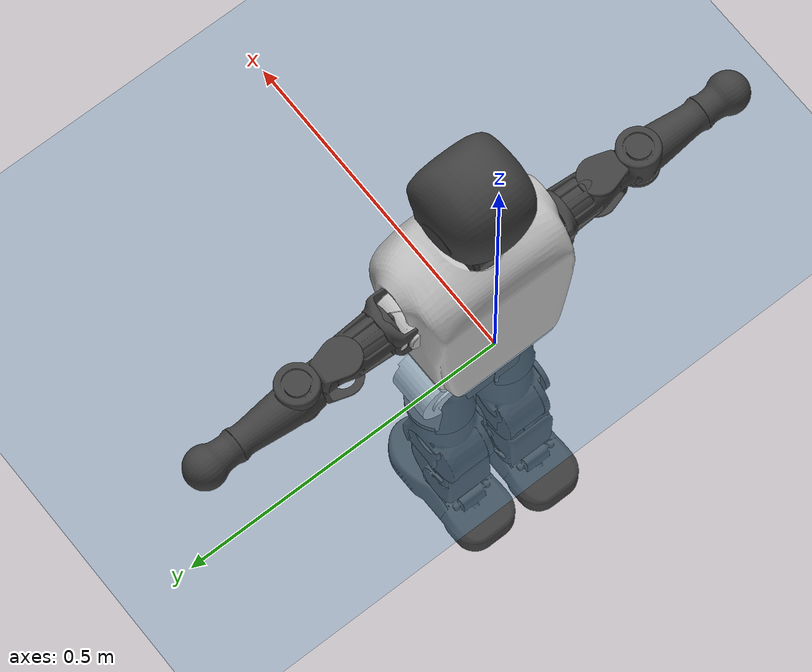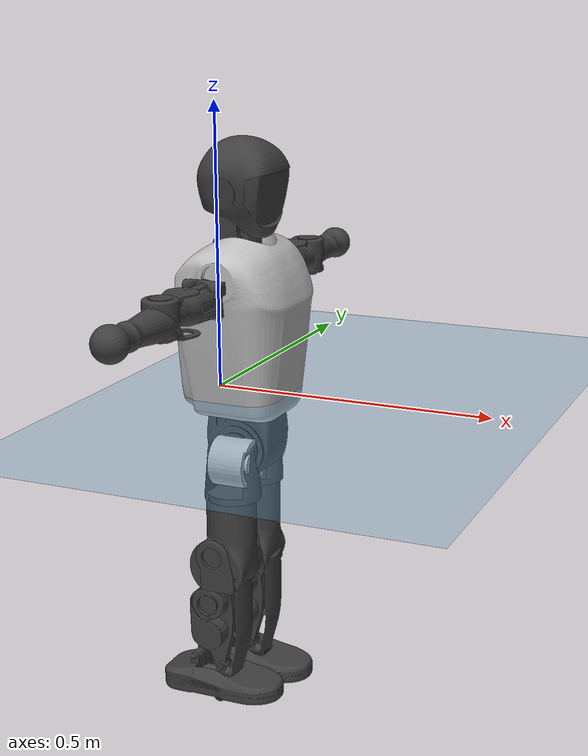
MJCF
<mujoco model="T1">
  <compiler angle="radian" assetdir="assets" balanceinertia="true" inertiafromgeom="false"/>

  <option timestep="0.005" density="1.2" viscosity="2e-05"/>

  <size nkey="1"/>

  <visual>
    <quality shadowsize="8192"/>
    <map shadowclip="0.5"/>
  </visual>

  <default>
    <default class="/">
      <joint armature="0.01" damping="0.01" frictionloss="0.1"/>
      <geom contype="0" conaffinity="0" group="1" solref="-1000 -80"/>
      <site size="0.01 0.005 0.005" group="5"/>
      <general forcelimited="true" biastype="affine" gainprm="25" biasprm="0 -25 -0.6"/>
      <default class="t1">
        <geom rgba="0.25 0.25 0.25 1"/>
        <default class="visual">
          <geom type="mesh" group="2"/>
        </default>
        <default class="collision">
          <geom group="3"/>
        </default>
        <default class="foot">
          <geom size="0.1115 0.05 0.015" type="box" condim="6" group="4" priority="1" solimp="0.015 1 0.015"/>
        </default>
        <default class="reward_collision_sphere">
          <geom group="5" rgba="1 0 0 1"/>
        </default>
      </default>
    </default>
  </default>

  <asset>
    <texture type="skybox" colorspace="auto" name="//unnamed_texture_0" builtin="gradient" rgb1="0.95 0.95 0.95" rgb2="0.95 0.95 0.95" width="100" height="600"/>
    <texture type="2d" colorspace="auto" name="texplane" builtin="checker" rgb1="0.345 0.575 0.748" rgb2="0.345 0.575 0.748" markrgb="1 1 1" width="512" height="512"/>
    <material name="MatPlane" class="/" texture="texplane" texuniform="true" texrepeat="2 2" specular="0.9"/>
    <mesh name="Trunk" class="/" file="Trunk.stl"/>
    <mesh name="H1" class="/" file="H1.stl"/>
    <mesh name="H2" class="/" file="H2.stl"/>
    <mesh name="AL1" class="/" file="AL1.stl"/>
    <mesh name="AL2" class="/" file="AL2.stl"/>
    <mesh name="AL3" class="/" file="AL3.stl"/>
    <mesh name="left_hand_link" class="/" file="left_hand_link.stl"/>
    <mesh name="AR1" class="/" file="AR1.stl"/>
    <mesh name="AR2" class="/" file="AR2.stl"/>
    <mesh name="AR3" class="/" file="AR3.stl"/>
    <mesh name="right_hand_link" class="/" file="right_hand_link.stl"/>
    <mesh name="Waist" class="/" file="Waist.stl"/>
    <mesh name="Hip_Pitch_Left" class="/" file="Hip_Pitch_Left.stl"/>
    <mesh name="Hip_Roll_Left" class="/" file="Hip_Roll_Left.stl"/>
    <mesh name="Hip_Yaw_Left" class="/" file="Hip_Yaw_Left.stl"/>
    <mesh name="Shank_Left" class="/" file="Shank_Left.stl"/>
    <mesh name="Ankle_Cross_Left" class="/" file="Ankle_Cross_Left.stl"/>
    <mesh name="left_foot_link" class="/" file="left_foot_link.stl"/>
    <mesh name="Hip_Pitch_Right" class="/" file="Hip_Pitch_Right.stl"/>
    <mesh name="Hip_Roll_Right" class="/" file="Hip_Roll_Right.stl"/>
    <mesh name="Hip_Yaw_Right" class="/" file="Hip_Yaw_Right.stl"/>
    <mesh name="Shank_Right" class="/" file="Shank_Right.stl"/>
    <mesh name="Ankle_Cross_Right" class="/" file="Ankle_Cross_Right.stl"/>
    <mesh name="right_foot_link" class="/" file="right_foot_link.stl"/>
  </asset>

  <worldbody>
    <geom name="floor" class="/" size="100 100 0.125" type="plane" group="0" material="MatPlane"/>
    <light name="toplight_shadow" class="/" pos="0 0 5" dir="0.0990148 0.0990148 -0.990148" type="directional" ambient="0.04 0.04 0.04" diffuse="0.55 0.55 0.55" specular="0.12 0.12 0.12"/>
    <light name="toplight_fill" class="/" pos="0 0 5" dir="0.0990148 0.0990148 -0.990148" type="directional" castshadow="false" ambient="0.04 0.04 0.04" diffuse="0.3 0.3 0.3" specular="0.08 0.08 0.08"/>
    <body name="trunk" childclass="t1" pos="-0.0018927 0.00152389 -0.00127791" quat="0.999994 -0.000335532 0.0033436 0.000870132">
      <inertial pos="0.0439614 0.00479032 0.087957" quat="0.999966 0.00727205 -0.0023594 -0.00299449" mass="4.45774" diaginertia="0.0178705 0.00505678 0.0241193"/>
      <joint name="//unnamed_joint_0" type="free" armature="0" damping="0" frictionloss="0"/>
      <geom name="//unnamed_geom_1" class="visual" rgba="0.76 0.76 0.76 1" mesh="Trunk"/>
      <geom name="//unnamed_geom_2" class="collision" size="0.0530399 0.0707199 0.10608" pos="0.0432422 0 0.0990851" type="box"/>
      <geom name="//unnamed_geom_3" class="reward_collision_sphere" size="0.0813279" pos="0.0432422 0 0.0825709"/>
      <geom name="//unnamed_geom_4" class="reward_collision_sphere" size="0.010608" pos="0.0432422 0.0488908 0"/>
      <geom name="//unnamed_geom_5" class="reward_collision_sphere" size="0.010608" pos="0.0432422 -0.0488908 0"/>
      <geom name="//unnamed_geom_6" class="reward_collision_sphere" size="0.010608" pos="0.0432422 0.0615449 0.148628"/>
      <geom name="//unnamed_geom_7" class="reward_collision_sphere" size="0.010608" pos="0.0432422 -0.0615449 0.148628"/>
      <site name="imu" pos="-0.0178919 0.00700386 0.0180322" size="0.00707199"/>
      <camera name="track" pos="0 -1.15037 0" quat="0.707107 0.707107 0 0" mode="trackcom"/>
      <camera name="ego_camera" pos="0.0879258 0 0.346798" quat="-0.5 -0.5 0.5 0.5"/>
      <body name="H1" pos="0.0444302 -0.00141643 0.201968" quat="1 -6.23802e-05 -0.000229802 -0.000149994">
        <inertial pos="0.00131754 -0.00864571 0.0463071" quat="0.783077 0.0014292 0.000843092 0.621923" mass="0.16572" diaginertia="4.98407e-05 1.56288e-05 6.65136e-05"/>
        <joint name="AAHead_yaw" pos="0 0 0" axis="0.0243321 -0.0238031 0.999421" range="-1.58559 1.53624" armature="0.00803617" damping="0.0109055" frictionloss="0.0711754"/>
        <geom name="//unnamed_geom_8" class="visual" mesh="H1"/>
        <body name="H2" pos="-0.00410813 -0.00711937 0.0546178" quat="0.999999 -0.000194022 0.000712723 -0.000712308">
          <inertial pos="-1.37307e-05 -0.00571999 0.0826479" quat="0.988236 0.113648 -0.0700071 -0.074654" mass="0.216673" diaginertia="0.000357484 0.000118984 0.000638958"/>
          <joint name="Head_pitch" pos="0 0 0" axis="-0.00250746 -0.999997 -0.000758422" range="-1.24816 0.35782" armature="0.0096276" damping="0.00536582" frictionloss="0.039183"/>
          <geom name="//unnamed_geom_9" class="visual" mesh="H2"/>
          <geom name="//unnamed_geom_10" class="collision" size="0.0565759" pos="0.00720703 0 0.090828"/>
          <geom name="//unnamed_geom_11" class="reward_collision_sphere" size="0.0636479" pos="0.0144141 0 0.0825709"/>
        </body>
      </body>
      <body name="AL1" pos="0.0432733 0.0661823 0.188304" quat="1 -0.000467045 0.000279255 -0.00021661">
        <inertial pos="0.00662228 0.02806 -0.0022304" quat="0.506681 0.497635 -0.49508 0.500529" mass="0.180729" diaginertia="0.000262025 8.01798e-05 0.000115557"/>
        <joint name="Left_Shoulder_Pitch" pos="0 0 0" axis="-0.0189468 0.999329 -0.0313596" stiffness="0.00575183" range="-3.27821 1.25312" armature="0.00648945" damping="0.00815802" frictionloss="0.0726703"/>
        <geom name="//unnamed_geom_12" class="visual" rgba="0.76 0.76 0.76 1" mesh="AL1"/>
        <body name="AL2" pos="0.00399957 0.0318436 0.00359204" quat="1 0.000247639 -0.000172654 -0.000157843">
          <inertial pos="0.00112716 0.0235537 0.00545559" quat="0.482632 0.52413 -0.471607 0.519558" mass="0.0592681" diaginertia="7.77708e-05 2.16852e-05 6.83951e-05"/>
          <joint name="Left_Shoulder_Roll" pos="0 0 0" axis="-0.999982 -0.00582904 -0.00139775" range="-1.60334 1.78263" armature="0.00667728" damping="0.00208221" frictionloss="0.0688792"/>
          <geom name="//unnamed_geom_13" class="visual" mesh="AL2"/>
          <body name="AL3" pos="-0.000710511 0.0367761 -0.000499813" quat="1 0.000256813 0.000932425 -0.00018375">
            <inertial pos="0.00220828 0.0485463 0.00142205" quat="0.72016 0.69309 0.026907 -0.016506" mass="0.356141" diaginertia="0.00240408 0.000781733 0.000258741"/>
            <joint name="Left_Elbow_Pitch" pos="0 0 0" axis="0.00803308 -0.999968 8.65408e-05" stiffness="0.00228249" range="-2.28202 2.22759" armature="0.00719734" damping="0" frictionloss="0.0430677"/>
            <geom name="//unnamed_geom_14" class="visual" mesh="AL3"/>
            <geom name="//unnamed_geom_15" class="collision" size="0.021216 0.0530399" pos="0 0.0287593 0" quat="0.707105 0.707108 0 0" type="cylinder"/>
            <geom name="//unnamed_geom_16" class="reward_collision_sphere" size="0.0254592"/>
            <body name="left_hand_link" pos="-0.00592786 0.0816119 -0.0029918" quat="1 -0.000822459 -0.000183181 0.000238269">
              <inertial pos="-0.00613978 0.0666171 0.00610094" quat="0.708454 0.705755 0.00116406 -0.00132167" mass="0.115865" diaginertia="0.0016041 0.000486285 7.82253e-05"/>
              <joint name="Left_Elbow_Yaw" pos="0 0 0" axis="0.00766777 -0.00544523 0.999956" stiffness="0.0019842" range="-2.41754 -0.0274487" armature="0.00592449" damping="0.00215251" frictionloss="0.0706296"/>
              <geom name="//unnamed_geom_17" class="visual" mesh="left_hand_link"/>
              <geom name="//unnamed_geom_18" class="collision" size="0.021216 0.0618799" pos="0 0.0747742 0" quat="0.707105 0.707108 0 0" type="cylinder"/>
              <geom name="//unnamed_geom_19" class="reward_collision_sphere" size="0.03536"/>
              <geom name="//unnamed_geom_20" class="reward_collision_sphere" size="0.024752" pos="0 0.0632704 0"/>
              <geom name="//unnamed_geom_21" class="reward_collision_sphere" size="0.024752" pos="0 0.123665 0"/>
            </body>
          </body>
        </body>
      </body>
      <body name="AR1" pos="0.0360781 -0.0574643 0.180247" quat="0.999991 0.00216627 -0.00273681 -0.0022485">
        <inertial pos="-0.000362453 -0.0255214 -0.000715516" quat="0.50066 0.493703 -0.505709 0.499856" mass="0.168859" diaginertia="0.000254406 7.20216e-05 0.000104066"/>
        <joint name="Right_Shoulder_Pitch" pos="0 0 0" axis="0.00412408 -0.999972 0.00631172" range="-1.2804 3.30898" armature="0.00698723" damping="0" frictionloss="0.0738053"/>
        <geom name="//unnamed_geom_22" class="visual" rgba="0.76 0.76 0.76 1" mesh="AR1"/>
        <body name="AR2" pos="-0.00230546 -0.0228515 0.00724712" quat="0.999997 -0.000208276 -0.000860529 -0.00237141">
          <inertial pos="0.00294386 -0.0220914 0.000359357" quat="0.50701 0.484724 -0.526902 0.479955" mass="0.0596073" diaginertia="8.14952e-05 2.22062e-05 7.05091e-05"/>
          <joint name="Right_Shoulder_Roll" pos="0 0 0" axis="-0.999643 0.0149211 0.0221608" stiffness="0.0132469" range="-1.71592 1.59796" armature="0.00698044" damping="0.0293871" frictionloss="0.0633235"/>
          <geom name="//unnamed_geom_23" class="visual" mesh="AR2"/>
          <body name="AR3" pos="0.00220037 -0.0337256 -0.00185926" quat="0.999996 -0.00104622 0.000558979 -0.00273511">
            <inertial pos="-0.00893101 -0.0469318 -0.00020154" quat="0.712637 0.701513 0.00522128 0.00102385" mass="0.353004" diaginertia="0.00226775 0.00072507 0.000218837"/>
            <joint name="Right_Elbow_Pitch" pos="0 0 0" axis="-0.0100926 0.999949 0.000159687" range="-2.26549 2.45529" armature="0.00718034" damping="0.00171599" frictionloss="0.0657285"/>
            <geom name="//unnamed_geom_24" class="visual" mesh="AR3"/>
            <geom name="//unnamed_geom_25" class="collision" size="0.021216 0.0530399" pos="0 -0.0287593 0" quat="0.707105 0.707108 0 0" type="cylinder"/>
            <geom name="//unnamed_geom_26" class="reward_collision_sphere" size="0.0254592"/>
            <body name="right_hand_link" pos="0.000946549 -0.0814148 -0.00629439" quat="0.999997 -0.00131593 0.00221342 0.000285491">
              <inertial pos="-0.00793584 -0.0626818 0.00684492" quat="0.707364 0.706848 0.000952297 -0.00093542" mass="0.129222" diaginertia="0.00195445 0.000587699 8.3258e-05"/>
              <joint name="Right_Elbow_Yaw" pos="0 0 0" axis="0.00144075 0.0112692 0.999935" range="0.0226658 2.55992" armature="0.00708049" damping="0.0114919" frictionloss="0.0692604"/>
              <geom name="//unnamed_geom_27" class="visual" mesh="right_hand_link"/>
              <geom name="//unnamed_geom_28" class="collision" size="0.021216 0.0618799" pos="0 -0.0747742 0" quat="0.707105 0.707108 0 0" type="cylinder"/>
              <geom name="//unnamed_geom_29" class="reward_collision_sphere" size="0.03536"/>
              <geom name="//unnamed_geom_30" class="reward_collision_sphere" size="0.024752" pos="0 -0.0632704 0"/>
              <geom name="//unnamed_geom_31" class="reward_collision_sphere" size="0.024752" pos="0 -0.123665 0"/>
            </body>
          </body>
        </body>
      </body>
      <body name="Waist" pos="0.0514091 0.00600104 -0.0968996" quat="0.999999 -0.00043673 -0.000453682 -0.00100863">
        <inertial pos="0.00399311 -0.00481257 0.00421793" quat="0.98033 -0.00037607 -0.197244 -0.00693264" mass="1.00614" diaginertia="0.00106933 0.0003538 0.00198619"/>
        <joint name="Waist" pos="0 0 0" axis="3.30976e-05 -0.000330711 1" range="-1.54997 1.57992" armature="0.00789047" damping="0.0424708" frictionloss="0.0624235"/>
        <geom name="//unnamed_geom_32" class="visual" mesh="Waist"/>
        <body name="Hip_Pitch_Left" pos="-0.00205506 0.0598631 0.00109395" quat="1 -1.76672e-05 0.000235745 -0.000380858">
          <inertial pos="0.0015657 -0.00275589 -0.00862342" quat="0.975102 0.221222 0.0152727 0.00186663" mass="0.376539" diaginertia="0.000356393 9.34178e-05 0.000490379"/>
          <joint name="Left_Hip_Pitch" pos="0 0 0" axis="0.00232156 0.999997 6.24632e-05" range="-1.765 1.45378" armature="0.00677443" damping="0.0254408" frictionloss="0.0755894"/>
          <geom name="//unnamed_geom_33" class="visual" rgba="0.76 0.76 0.76 1" mesh="Hip_Pitch_Left"/>
          <body name="Hip_Roll_Left" pos="-0.00660227 -0.00433843 -0.0135585" quat="0.999999 9.98431e-06 0.000714912 0.000887041">
            <inertial pos="-0.000356938 -0.000373397 -0.0390291" quat="0.709689 -0.0103171 0.00283225 0.704434" mass="0.126007" diaginertia="0.000294258 9.49035e-05 0.000198893"/>
            <joint name="Left_Hip_Roll" pos="0 0 0" axis="-0.999993 -0.00093849 -0.00349547" stiffness="0.0306681" range="-1.55627 0.061964" armature="0.00795485" damping="0.0106414" frictionloss="0.078384"/>
            <geom name="//unnamed_geom_34" class="visual" mesh="Hip_Roll_Left"/>
            <geom name="//unnamed_geom_35" class="reward_collision_sphere" size="0.038896"/>
            <body name="Hip_Yaw_Left" pos="0.00111137 -0.00779117 -0.0769833" quat="1 -0.0001669 3.7328e-06 3.40278e-05">
              <inertial pos="-0.00316142 -0.00158618 -0.0736442" quat="0.686616 -0.0481125 -0.0110797 0.725341" mass="0.796522" diaginertia="0.0049323 0.00171323 0.000958577"/>
              <joint name="Left_Hip_Yaw" pos="0 0 0" axis="0.00103416 -0.00137548 -0.999999" range="-1.05869 0.826172" armature="0.00612704" damping="0.0532373" frictionloss="0.0711732"/>
              <geom name="//unnamed_geom_36" class="visual" mesh="Hip_Yaw_Left"/>
              <geom name="//unnamed_geom_37" class="collision" size="0.03536 0.0565759" type="cylinder"/>
              <body name="Shank_Left" pos="-0.00722384 -0.00307882 -0.104294" quat="1 -0.000400751 -0.00036935 -0.000391018">
                <inertial pos="-0.00214995 0.000147182 -0.0972827" quat="0.997794 -0.00541802 -0.0208737 0.062779" mass="0.58496" diaginertia="0.00651443 0.00225725 0.000766982"/>
                <joint name="Left_Knee_Pitch" pos="0 0 0" axis="-0.00498758 0.999974 -0.00527645" range="-0.0444871 2.32312" armature="0.00720594" damping="0" frictionloss="0.0682325"/>
                <geom name="//unnamed_geom_38" class="visual" mesh="Shank_Left"/>
                <geom name="//unnamed_geom_39" class="collision" size="0.03536 0.0530399" pos="0 0 -0.0990851" type="cylinder"/>
                <geom name="//unnamed_geom_40" class="reward_collision_sphere" size="0.045968"/>
                <body name="Ankle_Cross_Left" pos="-0.00103023 -0.00253824 -0.22648" quat="1 0.000290278 0.000505957 -0.000409253">
                  <inertial pos="0.00426554 -0.00692362 -0.00667648" quat="0.443358 0.551373 0.551095 0.442398" mass="0.0272108" diaginertia="5.52167e-06 1.76981e-06 4.44031e-06"/>
                  <joint name="Left_Ankle_Pitch" pos="0 0 0" axis="-0.00479898 0.999676 -0.0250002" range="-0.8111 0.377489" armature="0.00933608" damping="0.00742257" frictionloss="0.0626741"/>
                  <geom name="//unnamed_geom_41" class="visual" mesh="Ankle_Cross_Left"/>
                  <body name="left_foot_link" pos="-0.000534638 -0.00292001 -0.0161097" quat="0.999992 0.00244916 -0.0006751 0.00308165">
                    <inertial pos="0.00665081 0.00140041 -0.00728475" quat="0.00596494 0.62638 0.00261933 0.779491" mass="0.244119" diaginertia="0.000496516 0.000148794 0.000766814"/>
                    <joint name="Left_Ankle_Roll" pos="0 0 0" axis="-0.999999 0.000693555 0.000736086" stiffness="0.0268295" range="-0.313833 0.581367" armature="0.0062737" damping="0" frictionloss="0.0946102"/>
                    <geom name="//unnamed_geom_42" class="visual" mesh="left_foot_link"/>
                    <geom name="left_foot" class="foot" size="0.0905551 0.0390606 0.00957156" pos="0.00720703 0 -0.0123856"/>
                    <geom name="//unnamed_geom_44" class="reward_collision_sphere" size="0.0367744" pos="0.00720703 0 -0.0123856"/>
                    <geom name="//unnamed_geom_45" class="reward_collision_sphere" size="0.021216" pos="0.0684668 -0.0132293 -0.0123856"/>
                    <geom name="//unnamed_geom_46" class="reward_collision_sphere" size="0.021216" pos="-0.0504492 -0.0132293 -0.0123856"/>
                    <site name="left_foot" class="foot" pos="0.00720703 0 -0.0123856" size="0.00707199"/>
                  </body>
                </body>
              </body>
            </body>
          </body>
        </body>
        <body name="Hip_Pitch_Right" pos="0.00446526 -0.0571112 -0.00101465" quat="0.999995 -0.00230768 -0.00195094 0.000244178">
          <inertial pos="-0.000494135 0.00861233 -0.0175337" quat="0.973705 -0.227503 0.00596289 -0.0102101" mass="0.36266" diaginertia="0.000333989 8.78865e-05 0.000443182"/>
          <joint name="Right_Hip_Pitch" pos="0 0 0" axis="0.000379944 -0.999996 -0.00295158" range="-1.56731 1.83165" armature="0.0057078" damping="0.013491" frictionloss="0.0730204"/>
          <geom name="//unnamed_geom_47" class="visual" rgba="0.76 0.76 0.76 1" mesh="Hip_Pitch_Right"/>
          <body name="Hip_Roll_Right" pos="-0.00735442 0.00563996 -0.0121525" quat="1 -0.000171253 -0.000130506 -0.000357485">
            <inertial pos="0.000870787 -0.000347476 -0.048129" quat="0.713365 -0.00627715 -0.00990313 0.700694" mass="0.120756" diaginertia="0.00032674 8.76035e-05 0.000189579"/>
            <joint name="Right_Hip_Roll" pos="0 0 0" axis="-0.999998 0.00201931 0.000458696" range="-0.204318 1.73277" armature="0.00793386" damping="0.0409102" frictionloss="0.097236"/>
            <geom name="//unnamed_geom_48" class="visual" mesh="Hip_Roll_Right"/>
            <geom name="//unnamed_geom_49" class="reward_collision_sphere" size="0.038896"/>
            <body name="Hip_Yaw_Right" pos="-0.00680762 0.00106564 -0.0707597" quat="0.999998 0.000677911 -0.00133455 0.00121228">
              <inertial pos="-0.0070388 0.00316577 -0.0769679" quat="0.739904 -0.0269198 -0.0551694 0.669906" mass="0.765639" diaginertia="0.00552869 0.0015532 0.00109663"/>
              <joint name="Right_Hip_Yaw" pos="0 0 0" axis="-0.0406565 -0.015573 -0.999052" range="-1.03375 0.972856" armature="0.00889115" damping="0" frictionloss="0.0782864"/>
              <geom name="//unnamed_geom_50" class="visual" mesh="Hip_Yaw_Right"/>
              <geom name="//unnamed_geom_51" class="collision" size="0.03536 0.0565759" type="cylinder"/>
              <body name="Shank_Right" pos="-0.0170995 -0.00701432 -0.109682" quat="0.999999 -0.000138535 0.0011162 -0.000754359">
                <inertial pos="-0.00621677 0.00309433 -0.100314" quat="0.999805 0.0172116 -0.00945622 -0.0022179" mass="0.642946" diaginertia="0.0064589 0.00219576 0.000732273"/>
                <joint name="Right_Knee_Pitch" pos="0 0 0" axis="-0.00853813 -0.999522 -0.0297153" stiffness="0.0372882" range="-2.3432 -0.0677905" armature="0.0068954" damping="0" frictionloss="0.0635703"/>
                <geom name="//unnamed_geom_52" class="visual" mesh="Shank_Right"/>
                <geom name="//unnamed_geom_53" class="collision" size="0.03536 0.0530399" pos="0 0 -0.0990851" type="cylinder"/>
                <geom name="//unnamed_geom_54" class="reward_collision_sphere" size="0.045968"/>
                <body name="Ankle_Cross_Right" pos="0.0011259 -0.00602142 -0.225362" quat="0.999996 -0.00121225 -0.0026238 -0.00011023">
                  <inertial pos="-0.00513274 -0.00472298 -0.00847788" quat="0.442331 0.550907 0.551284 0.443768" mass="0.025999" diaginertia="6.3373e-06 1.64118e-06 4.62996e-06"/>
                  <joint name="Right_Ankle_Pitch" pos="0 0 0" axis="0.0173788 -0.999836 -0.00512724" range="-0.169815 0.836899" armature="0.00815902" damping="0.00348001" frictionloss="0.0636985"/>
                  <geom name="//unnamed_geom_55" class="visual" mesh="Ankle_Cross_Right"/>
                  <body name="right_foot_link" pos="-0.00418764 -0.00357143 -0.0111376" quat="1 0.000596331 0.000430439 0.00039536">
                    <inertial pos="0.000245632 -0.00475942 -0.00793312" quat="-0.00291279 0.625826 -0.000352926 0.779957" mass="0.200688" diaginertia="0.000483154 0.000139391 0.000787356"/>
                    <joint name="Right_Ankle_Roll" pos="0 0 0" axis="-0.999986 -0.000818591 0.00522847" range="-0.475934 0.483393" armature="0.00763426" damping="0.00310715" frictionloss="0.0986238"/>
                    <geom name="//unnamed_geom_56" class="visual" mesh="right_foot_link"/>
                    <geom name="right_foot" class="foot" size="0.0953588 0.0373461 0.0101129" pos="0.00720703 0 -0.0123856"/>
                    <geom name="//unnamed_geom_58" class="reward_collision_sphere" size="0.028288"/>
                    <geom name="//unnamed_geom_59" class="reward_collision_sphere" size="0.021216" pos="0.00720703 0 -0.0123856"/>
                    <geom name="//unnamed_geom_60" class="reward_collision_sphere" size="0.021216" pos="0.0684668 0.0132293 -0.0123856"/>
                    <geom name="//unnamed_geom_61" class="reward_collision_sphere" size="0.021216" pos="-0.0504492 0.0132293 -0.0123856"/>
                    <site name="right_foot" class="foot" pos="0.00720703 0 -0.0123856" size="0.00707199"/>
                  </body>
                </body>
              </body>
            </body>
          </body>
        </body>
      </body>
    </body>
  </worldbody>

  <contact>
    <pair class="/" geom1="floor" geom2="left_foot" name="//unnamed_contact_0"/>
    <pair class="/" geom1="floor" geom2="right_foot" name="//unnamed_contact_1"/>
  </contact>

  <actuator>
    <general name="AAHead_yaw" class="/" joint="AAHead_yaw" forcerange="-4.85791 4.85791" gainprm="21.2816" biasprm="0 -21.2816 -0.40219"/>
    <general name="Head_pitch" class="/" joint="Head_pitch" forcerange="-5.0537 5.0537" gainprm="21.2816" biasprm="0 -21.2816 -0.40219"/>
    <general name="Left_Shoulder_Pitch" class="/" joint="Left_Shoulder_Pitch" forcerange="-17.0506 17.0506" gainprm="21.2816" biasprm="0 -21.2816 -0.40219"/>
    <general name="Left_Shoulder_Roll" class="/" joint="Left_Shoulder_Roll" forcerange="-12.4218 12.4218" gainprm="21.2816" biasprm="0 -21.2816 -0.40219"/>
    <general name="Left_Elbow_Pitch" class="/" joint="Left_Elbow_Pitch" forcerange="-13.4433 13.4433" gainprm="21.2816" biasprm="0 -21.2816 -0.40219"/>
    <general name="Left_Elbow_Yaw" class="/" joint="Left_Elbow_Yaw" forcerange="-12.3211 12.3211" gainprm="21.2816" biasprm="0 -21.2816 -0.40219"/>
    <general name="Right_Shoulder_Pitch" class="/" joint="Right_Shoulder_Pitch" forcerange="-12.0232 12.0232" gainprm="21.2816" biasprm="0 -21.2816 -0.40219"/>
    <general name="Right_Shoulder_Roll" class="/" joint="Right_Shoulder_Roll" forcerange="-13.4882 13.4882" gainprm="21.2816" biasprm="0 -21.2816 -0.40219"/>
    <general name="Right_Elbow_Pitch" class="/" joint="Right_Elbow_Pitch" forcerange="-13.7433 13.7433" gainprm="21.2816" biasprm="0 -21.2816 -0.40219"/>
    <general name="Right_Elbow_Yaw" class="/" joint="Right_Elbow_Yaw" forcerange="-13.6821 13.6821" gainprm="21.2816" biasprm="0 -21.2816 -0.40219"/>
    <general name="Waist" class="/" joint="Waist" forcerange="-22.8117 22.8117" gainprm="21.2816" biasprm="0 -21.2816 -0.40219"/>
    <general name="Left_Hip_Pitch" class="/" joint="Left_Hip_Pitch" forcerange="-29.2094 29.2094" gainprm="21.2816" biasprm="0 -21.2816 -0.40219"/>
    <general name="Left_Hip_Roll" class="/" joint="Left_Hip_Roll" forcerange="-22.5175 22.5175" gainprm="21.2816" biasprm="0 -21.2816 -0.40219"/>
    <general name="Left_Hip_Yaw" class="/" joint="Left_Hip_Yaw" forcerange="-22.624 22.624" gainprm="21.2816" biasprm="0 -21.2816 -0.40219"/>
    <general name="Left_Knee_Pitch" class="/" joint="Left_Knee_Pitch" forcerange="-41.3145 41.3145" gainprm="21.2816" biasprm="0 -21.2816 -0.40219"/>
    <general name="Left_Ankle_Pitch" class="/" joint="Left_Ankle_Pitch" forcerange="-10.1618 10.1618" gainprm="21.2816" biasprm="0 -21.2816 -0.40219"/>
    <general name="Left_Ankle_Roll" class="/" joint="Left_Ankle_Roll" forcerange="-13.0986 13.0986" gainprm="21.2816" biasprm="0 -21.2816 -0.40219"/>
    <general name="Right_Hip_Pitch" class="/" joint="Right_Hip_Pitch" forcerange="-34.0782 34.0782" gainprm="21.2816" biasprm="0 -21.2816 -0.40219"/>
    <general name="Right_Hip_Roll" class="/" joint="Right_Hip_Roll" forcerange="-16.1637 16.1637" gainprm="21.2816" biasprm="0 -21.2816 -0.40219"/>
    <general name="Right_Hip_Yaw" class="/" joint="Right_Hip_Yaw" forcerange="-24.6564 24.6564" gainprm="21.2816" biasprm="0 -21.2816 -0.40219"/>
    <general name="Right_Knee_Pitch" class="/" joint="Right_Knee_Pitch" forcerange="-47.6354 47.6354" gainprm="21.2816" biasprm="0 -21.2816 -0.40219"/>
    <general name="Right_Ankle_Pitch" class="/" joint="Right_Ankle_Pitch" forcerange="-13.1515 13.1515" gainprm="21.2816" biasprm="0 -21.2816 -0.40219"/>
    <general name="Right_Ankle_Roll" class="/" joint="Right_Ankle_Roll" forcerange="-8.49031 8.49031" gainprm="21.2816" biasprm="0 -21.2816 -0.40219"/>
  </actuator>

  <sensor>
    <gyro site="imu" name="imu_angular_velocity"/>
    <velocimeter site="imu" name="imu_linear_velocity"/>
    <framelinvel objtype="site" objname="left_foot" name="left_foot_global_linear_velocity"/>
    <framelinvel objtype="site" objname="right_foot" name="right_foot_global_linear_velocity"/>
  </sensor>

  <keyframe>
    <key name="home" qpos="0 0 0.6385 1 0 0 0 0 0 0 1.4 0 -0.4 0 -1.4 0 0.4 0 -0.4 0 0 0.8 -0.4 0 0.4 0 0 -0.8 0.4 0"/>
  </keyframe>
</mujoco>
